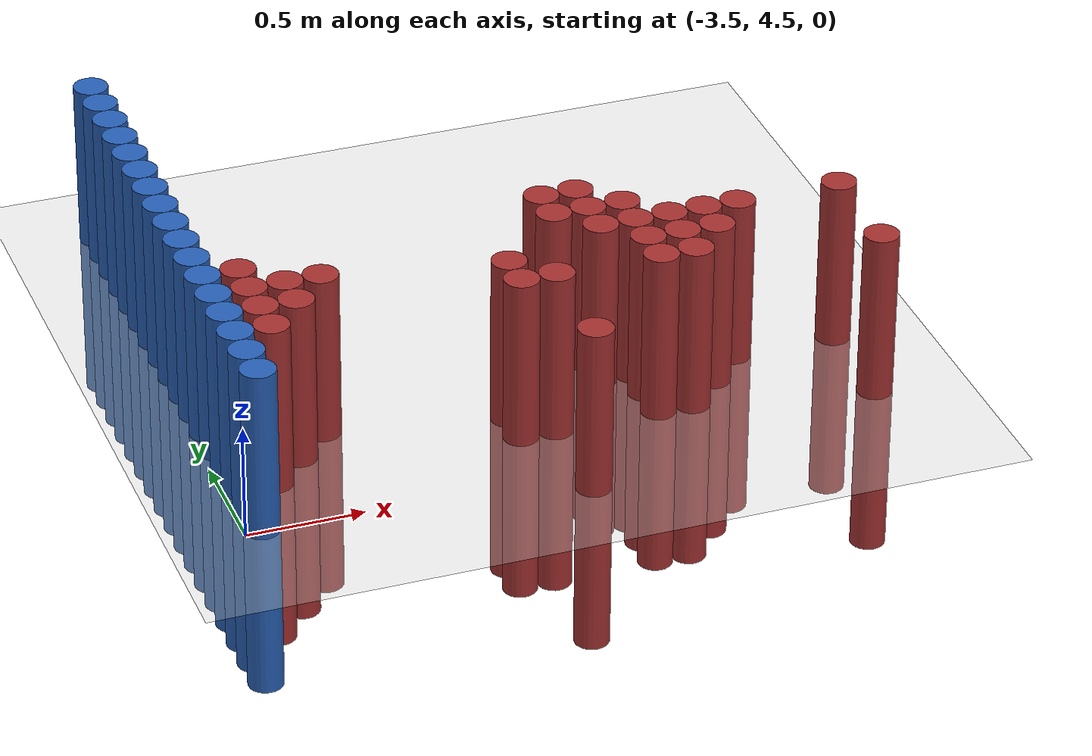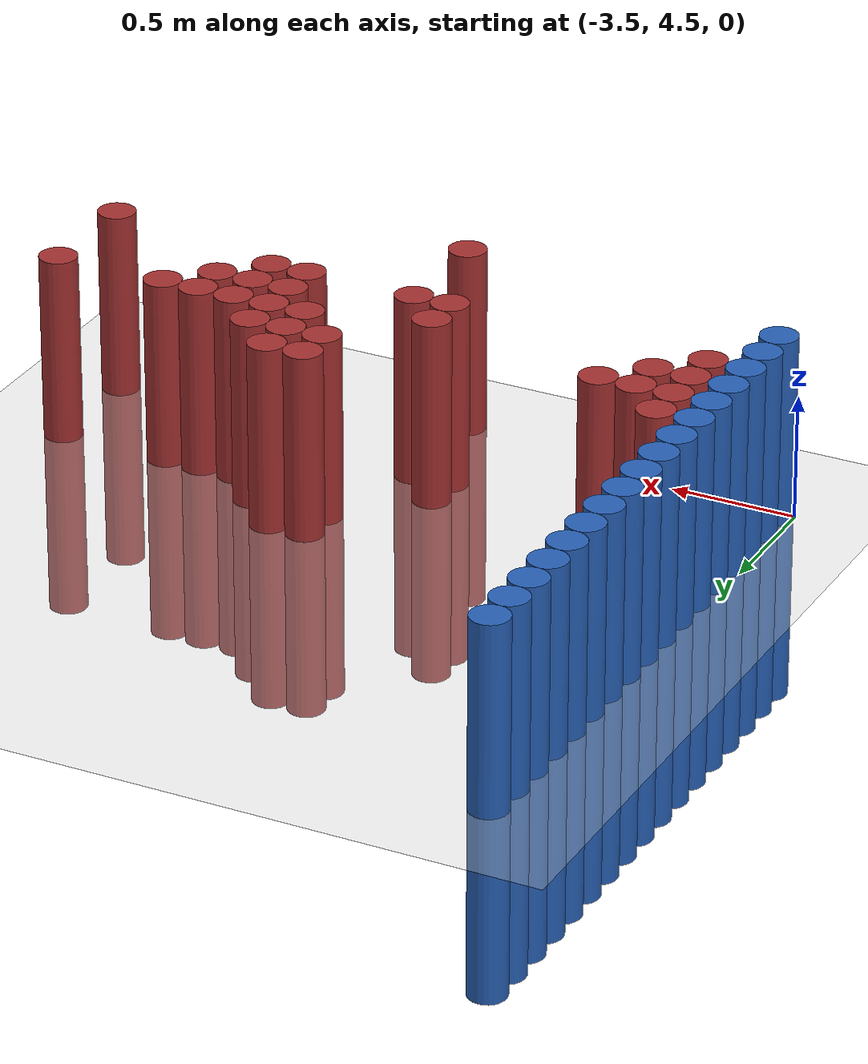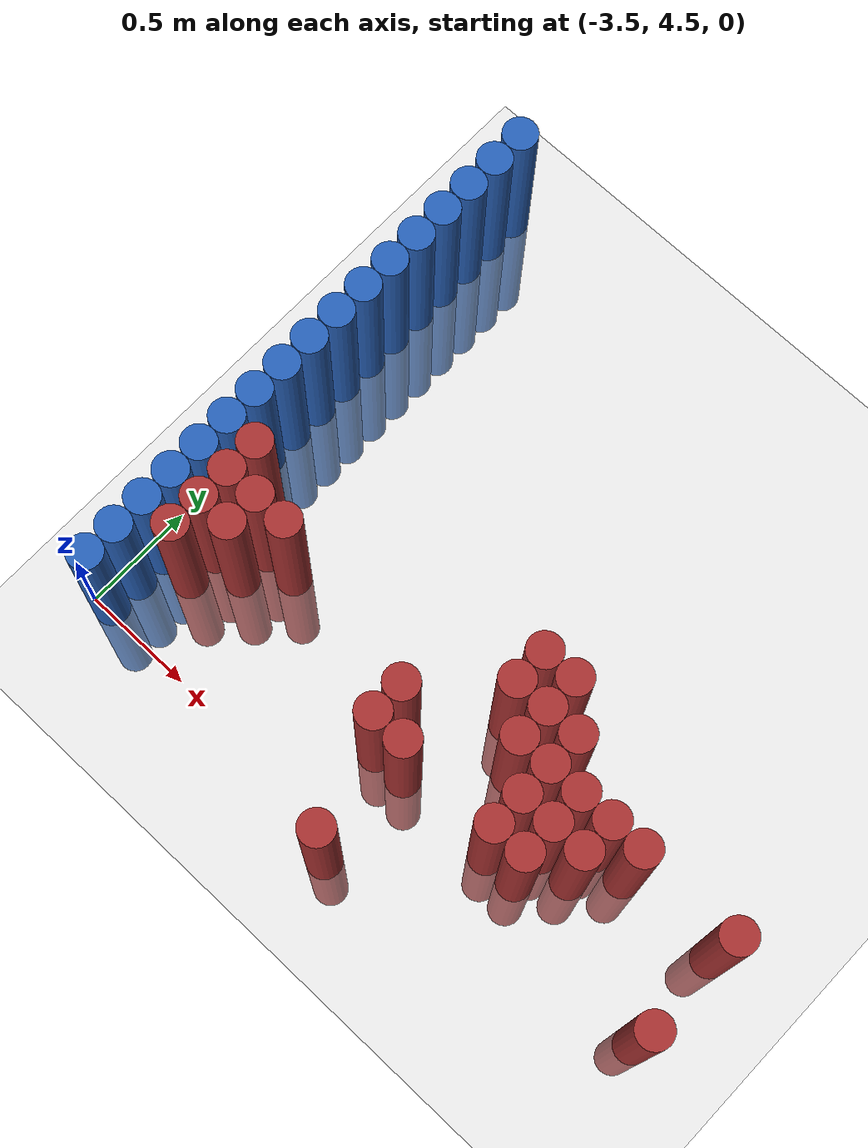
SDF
<sdf version="1.6">
 <world name="default">
  <model name="ground_plane">
   <static>1</static>
   <link name="link">
    <collision name="collision">
     <geometry><plane><normal>0 0 1</normal><size>100 100</size></plane></geometry>
     <surface><friction><ode><mu>100</mu><mu2>50</mu2></ode></friction></surface>
    </collision>
    <visual name="visual">
     <cast_shadows>0</cast_shadows>
     <geometry><plane><normal>0 0 1</normal><size>100 100</size></plane></geometry>
     <material>
      <script><uri>file://media/materials/scripts/gazebo.material</uri><name>Gazebo/Grey</name></script>
     </material>
    </visual>
   </link>
  </model>
  <model name="unit_cylinder_175">
   <static>1</static>
   <pose>-3.425000 4.525000 0.000000 0.000000 0.000000 0.000000</pose>
   <link name="link">
    <inertial>
     <mass>1</mass>
     <inertia><ixx>0.145833</ixx><ixy>0</ixy><ixz>0</ixz><iyy>0.145833</iyy><iyz>0</iyz><izz>0.125</izz></inertia>
    </inertial>
    <collision name="collision">
     <geometry><cylinder><radius>0.075000</radius><length>1.5</length></cylinder></geometry>
    </collision>
    <visual name="visual">
     <geometry><cylinder><radius>0.075000</radius><length>1.5</length></cylinder></geometry>
     <material>
      <ambient>0.152000 0.379000 0.720000 1</ambient>
      <diffuse>0.152000 0.379000 0.720000 1</diffuse>
     </material>
     <material>
      <script><name>Gazebo/Grey</name><uri>file://media/materials/scripts/gazebo.material</uri></script>
     </material>
    </visual>
   </link>
  </model>
  <model name="unit_cylinder_177">
   <static>1</static>
   <pose>-3.425000 4.675000 0.000000 0.000000 0.000000 0.000000</pose>
   <link name="link">
    <inertial>
     <mass>1</mass>
     <inertia><ixx>0.145833</ixx><ixy>0</ixy><ixz>0</ixz><iyy>0.145833</iyy><iyz>0</iyz><izz>0.125</izz></inertia>
    </inertial>
    <collision name="collision">
     <geometry><cylinder><radius>0.075000</radius><length>1.5</length></cylinder></geometry>
    </collision>
    <visual name="visual">
     <geometry><cylinder><radius>0.075000</radius><length>1.5</length></cylinder></geometry>
     <material>
      <ambient>0.152000 0.379000 0.720000 1</ambient>
      <diffuse>0.152000 0.379000 0.720000 1</diffuse>
     </material>
     <material>
      <script><name>Gazebo/Grey</name><uri>file://media/materials/scripts/gazebo.material</uri></script>
     </material>
    </visual>
   </link>
  </model>
  <model name="unit_cylinder_179">
   <static>1</static>
   <pose>-3.425000 4.825000 0.000000 0.000000 0.000000 0.000000</pose>
   <link name="link">
    <inertial>
     <mass>1</mass>
     <inertia><ixx>0.145833</ixx><ixy>0</ixy><ixz>0</ixz><iyy>0.145833</iyy><iyz>0</iyz><izz>0.125</izz></inertia>
    </inertial>
    <collision name="collision">
     <geometry><cylinder><radius>0.075000</radius><length>1.5</length></cylinder></geometry>
    </collision>
    <visual name="visual">
     <geometry><cylinder><radius>0.075000</radius><length>1.5</length></cylinder></geometry>
     <material>
      <ambient>0.152000 0.379000 0.720000 1</ambient>
      <diffuse>0.152000 0.379000 0.720000 1</diffuse>
     </material>
     <material>
      <script><name>Gazebo/Grey</name><uri>file://media/materials/scripts/gazebo.material</uri></script>
     </material>
    </visual>
   </link>
  </model>
  <model name="unit_cylinder_181">
   <static>1</static>
   <pose>-3.425000 4.975000 0.000000 0.000000 0.000000 0.000000</pose>
   <link name="link">
    <inertial>
     <mass>1</mass>
     <inertia><ixx>0.145833</ixx><ixy>0</ixy><ixz>0</ixz><iyy>0.145833</iyy><iyz>0</iyz><izz>0.125</izz></inertia>
    </inertial>
    <collision name="collision">
     <geometry><cylinder><radius>0.075000</radius><length>1.5</length></cylinder></geometry>
    </collision>
    <visual name="visual">
     <geometry><cylinder><radius>0.075000</radius><length>1.5</length></cylinder></geometry>
     <material>
      <ambient>0.152000 0.379000 0.720000 1</ambient>
      <diffuse>0.152000 0.379000 0.720000 1</diffuse>
     </material>
     <material>
      <script><name>Gazebo/Grey</name><uri>file://media/materials/scripts/gazebo.material</uri></script>
     </material>
    </visual>
   </link>
  </model>
  <model name="unit_cylinder_183">
   <static>1</static>
   <pose>-3.425000 5.125000 0.000000 0.000000 0.000000 0.000000</pose>
   <link name="link">
    <inertial>
     <mass>1</mass>
     <inertia><ixx>0.145833</ixx><ixy>0</ixy><ixz>0</ixz><iyy>0.145833</iyy><iyz>0</iyz><izz>0.125</izz></inertia>
    </inertial>
    <collision name="collision">
     <geometry><cylinder><radius>0.075000</radius><length>1.5</length></cylinder></geometry>
    </collision>
    <visual name="visual">
     <geometry><cylinder><radius>0.075000</radius><length>1.5</length></cylinder></geometry>
     <material>
      <ambient>0.152000 0.379000 0.720000 1</ambient>
      <diffuse>0.152000 0.379000 0.720000 1</diffuse>
     </material>
     <material>
      <script><name>Gazebo/Grey</name><uri>file://media/materials/scripts/gazebo.material</uri></script>
     </material>
    </visual>
   </link>
  </model>
  <model name="unit_cylinder_185">
   <static>1</static>
   <pose>-3.425000 5.275000 0.000000 0.000000 0.000000 0.000000</pose>
   <link name="link">
    <inertial>
     <mass>1</mass>
     <inertia><ixx>0.145833</ixx><ixy>0</ixy><ixz>0</ixz><iyy>0.145833</iyy><iyz>0</iyz><izz>0.125</izz></inertia>
    </inertial>
    <collision name="collision">
     <geometry><cylinder><radius>0.075000</radius><length>1.5</length></cylinder></geometry>
    </collision>
    <visual name="visual">
     <geometry><cylinder><radius>0.075000</radius><length>1.5</length></cylinder></geometry>
     <material>
      <ambient>0.152000 0.379000 0.720000 1</ambient>
      <diffuse>0.152000 0.379000 0.720000 1</diffuse>
     </material>
     <material>
      <script><name>Gazebo/Grey</name><uri>file://media/materials/scripts/gazebo.material</uri></script>
     </material>
    </visual>
   </link>
  </model>
  <model name="unit_cylinder_187">
   <static>1</static>
   <pose>-3.425000 5.425000 0.000000 0.000000 0.000000 0.000000</pose>
   <link name="link">
    <inertial>
     <mass>1</mass>
     <inertia><ixx>0.145833</ixx><ixy>0</ixy><ixz>0</ixz><iyy>0.145833</iyy><iyz>0</iyz><izz>0.125</izz></inertia>
    </inertial>
    <collision name="collision">
     <geometry><cylinder><radius>0.075000</radius><length>1.5</length></cylinder></geometry>
    </collision>
    <visual name="visual">
     <geometry><cylinder><radius>0.075000</radius><length>1.5</length></cylinder></geometry>
     <material>
      <ambient>0.152000 0.379000 0.720000 1</ambient>
      <diffuse>0.152000 0.379000 0.720000 1</diffuse>
     </material>
     <material>
      <script><name>Gazebo/Grey</name><uri>file://media/materials/scripts/gazebo.material</uri></script>
     </material>
    </visual>
   </link>
  </model>
  <model name="unit_cylinder_189">
   <static>1</static>
   <pose>-3.425000 5.575000 0.000000 0.000000 0.000000 0.000000</pose>
   <link name="link">
    <inertial>
     <mass>1</mass>
     <inertia><ixx>0.145833</ixx><ixy>0</ixy><ixz>0</ixz><iyy>0.145833</iyy><iyz>0</iyz><izz>0.125</izz></inertia>
    </inertial>
    <collision name="collision">
     <geometry><cylinder><radius>0.075000</radius><length>1.5</length></cylinder></geometry>
    </collision>
    <visual name="visual">
     <geometry><cylinder><radius>0.075000</radius><length>1.5</length></cylinder></geometry>
     <material>
      <ambient>0.152000 0.379000 0.720000 1</ambient>
      <diffuse>0.152000 0.379000 0.720000 1</diffuse>
     </material>
     <material>
      <script><name>Gazebo/Grey</name><uri>file://media/materials/scripts/gazebo.material</uri></script>
     </material>
    </visual>
   </link>
  </model>
  <model name="unit_cylinder_191">
   <static>1</static>
   <pose>-3.425000 5.725000 0.000000 0.000000 0.000000 0.000000</pose>
   <link name="link">
    <inertial>
     <mass>1</mass>
     <inertia><ixx>0.145833</ixx><ixy>0</ixy><ixz>0</ixz><iyy>0.145833</iyy><iyz>0</iyz><izz>0.125</izz></inertia>
    </inertial>
    <collision name="collision">
     <geometry><cylinder><radius>0.075000</radius><length>1.5</length></cylinder></geometry>
    </collision>
    <visual name="visual">
     <geometry><cylinder><radius>0.075000</radius><length>1.5</length></cylinder></geometry>
     <material>
      <ambient>0.152000 0.379000 0.720000 1</ambient>
      <diffuse>0.152000 0.379000 0.720000 1</diffuse>
     </material>
     <material>
      <script><name>Gazebo/Grey</name><uri>file://media/materials/scripts/gazebo.material</uri></script>
     </material>
    </visual>
   </link>
  </model>
  <model name="unit_cylinder_193">
   <static>1</static>
   <pose>-3.425000 5.875000 0.000000 0.000000 0.000000 0.000000</pose>
   <link name="link">
    <inertial>
     <mass>1</mass>
     <inertia><ixx>0.145833</ixx><ixy>0</ixy><ixz>0</ixz><iyy>0.145833</iyy><iyz>0</iyz><izz>0.125</izz></inertia>
    </inertial>
    <collision name="collision">
     <geometry><cylinder><radius>0.075000</radius><length>1.5</length></cylinder></geometry>
    </collision>
    <visual name="visual">
     <geometry><cylinder><radius>0.075000</radius><length>1.5</length></cylinder></geometry>
     <material>
      <ambient>0.152000 0.379000 0.720000 1</ambient>
      <diffuse>0.152000 0.379000 0.720000 1</diffuse>
     </material>
     <material>
      <script><name>Gazebo/Grey</name><uri>file://media/materials/scripts/gazebo.material</uri></script>
     </material>
    </visual>
   </link>
  </model>
  <model name="unit_cylinder_195">
   <static>1</static>
   <pose>-3.425000 6.025000 0.000000 0.000000 0.000000 0.000000</pose>
   <link name="link">
    <inertial>
     <mass>1</mass>
     <inertia><ixx>0.145833</ixx><ixy>0</ixy><ixz>0</ixz><iyy>0.145833</iyy><iyz>0</iyz><izz>0.125</izz></inertia>
    </inertial>
    <collision name="collision">
     <geometry><cylinder><radius>0.075000</radius><length>1.5</length></cylinder></geometry>
    </collision>
    <visual name="visual">
     <geometry><cylinder><radius>0.075000</radius><length>1.5</length></cylinder></geometry>
     <material>
      <ambient>0.152000 0.379000 0.720000 1</ambient>
      <diffuse>0.152000 0.379000 0.720000 1</diffuse>
     </material>
     <material>
      <script><name>Gazebo/Grey</name><uri>file://media/materials/scripts/gazebo.material</uri></script>
     </material>
    </visual>
   </link>
  </model>
  <model name="unit_cylinder_197">
   <static>1</static>
   <pose>-3.425000 6.175000 0.000000 0.000000 0.000000 0.000000</pose>
   <link name="link">
    <inertial>
     <mass>1</mass>
     <inertia><ixx>0.145833</ixx><ixy>0</ixy><ixz>0</ixz><iyy>0.145833</iyy><iyz>0</iyz><izz>0.125</izz></inertia>
    </inertial>
    <collision name="collision">
     <geometry><cylinder><radius>0.075000</radius><length>1.5</length></cylinder></geometry>
    </collision>
    <visual name="visual">
     <geometry><cylinder><radius>0.075000</radius><length>1.5</length></cylinder></geometry>
     <material>
      <ambient>0.152000 0.379000 0.720000 1</ambient>
      <diffuse>0.152000 0.379000 0.720000 1</diffuse>
     </material>
     <material>
      <script><name>Gazebo/Grey</name><uri>file://media/materials/scripts/gazebo.material</uri></script>
     </material>
    </visual>
   </link>
  </model>
  <model name="unit_cylinder_199">
   <static>1</static>
   <pose>-3.425000 6.325000 0.000000 0.000000 0.000000 0.000000</pose>
   <link name="link">
    <inertial>
     <mass>1</mass>
     <inertia><ixx>0.145833</ixx><ixy>0</ixy><ixz>0</ixz><iyy>0.145833</iyy><iyz>0</iyz><izz>0.125</izz></inertia>
    </inertial>
    <collision name="collision">
     <geometry><cylinder><radius>0.075000</radius><length>1.5</length></cylinder></geometry>
    </collision>
    <visual name="visual">
     <geometry><cylinder><radius>0.075000</radius><length>1.5</length></cylinder></geometry>
     <material>
      <ambient>0.152000 0.379000 0.720000 1</ambient>
      <diffuse>0.152000 0.379000 0.720000 1</diffuse>
     </material>
     <material>
      <script><name>Gazebo/Grey</name><uri>file://media/materials/scripts/gazebo.material</uri></script>
     </material>
    </visual>
   </link>
  </model>
  <model name="unit_cylinder_201">
   <static>1</static>
   <pose>-3.425000 6.475000 0.000000 0.000000 0.000000 0.000000</pose>
   <link name="link">
    <inertial>
     <mass>1</mass>
     <inertia><ixx>0.145833</ixx><ixy>0</ixy><ixz>0</ixz><iyy>0.145833</iyy><iyz>0</iyz><izz>0.125</izz></inertia>
    </inertial>
    <collision name="collision">
     <geometry><cylinder><radius>0.075000</radius><length>1.5</length></cylinder></geometry>
    </collision>
    <visual name="visual">
     <geometry><cylinder><radius>0.075000</radius><length>1.5</length></cylinder></geometry>
     <material>
      <ambient>0.152000 0.379000 0.720000 1</ambient>
      <diffuse>0.152000 0.379000 0.720000 1</diffuse>
     </material>
     <material>
      <script><name>Gazebo/Grey</name><uri>file://media/materials/scripts/gazebo.material</uri></script>
     </material>
    </visual>
   </link>
  </model>
  <model name="unit_cylinder_203">
   <static>1</static>
   <pose>-3.425000 6.625000 0.000000 0.000000 0.000000 0.000000</pose>
   <link name="link">
    <inertial>
     <mass>1</mass>
     <inertia><ixx>0.145833</ixx><ixy>0</ixy><ixz>0</ixz><iyy>0.145833</iyy><iyz>0</iyz><izz>0.125</izz></inertia>
    </inertial>
    <collision name="collision">
     <geometry><cylinder><radius>0.075000</radius><length>1.5</length></cylinder></geometry>
    </collision>
    <visual name="visual">
     <geometry><cylinder><radius>0.075000</radius><length>1.5</length></cylinder></geometry>
     <material>
      <ambient>0.152000 0.379000 0.720000 1</ambient>
      <diffuse>0.152000 0.379000 0.720000 1</diffuse>
     </material>
     <material>
      <script><name>Gazebo/Grey</name><uri>file://media/materials/scripts/gazebo.material</uri></script>
     </material>
    </visual>
   </link>
  </model>
  <model name="unit_cylinder_205">
   <static>1</static>
   <pose>-3.425000 6.775000 0.000000 0.000000 0.000000 0.000000</pose>
   <link name="link">
    <inertial>
     <mass>1</mass>
     <inertia><ixx>0.145833</ixx><ixy>0</ixy><ixz>0</ixz><iyy>0.145833</iyy><iyz>0</iyz><izz>0.125</izz></inertia>
    </inertial>
    <collision name="collision">
     <geometry><cylinder><radius>0.075000</radius><length>1.5</length></cylinder></geometry>
    </collision>
    <visual name="visual">
     <geometry><cylinder><radius>0.075000</radius><length>1.5</length></cylinder></geometry>
     <material>
      <ambient>0.152000 0.379000 0.720000 1</ambient>
      <diffuse>0.152000 0.379000 0.720000 1</diffuse>
     </material>
     <material>
      <script><name>Gazebo/Grey</name><uri>file://media/materials/scripts/gazebo.material</uri></script>
     </material>
    </visual>
   </link>
  </model>
  <model name="unit_cylinder_207">
   <static>1</static>
   <pose>-3.425000 6.925000 0.000000 0.000000 0.000000 0.000000</pose>
   <link name="link">
    <inertial>
     <mass>1</mass>
     <inertia><ixx>0.145833</ixx><ixy>0</ixy><ixz>0</ixz><iyy>0.145833</iyy><iyz>0</iyz><izz>0.125</izz></inertia>
    </inertial>
    <collision name="collision">
     <geometry><cylinder><radius>0.075000</radius><length>1.5</length></cylinder></geometry>
    </collision>
    <visual name="visual">
     <geometry><cylinder><radius>0.075000</radius><length>1.5</length></cylinder></geometry>
     <material>
      <ambient>0.152000 0.379000 0.720000 1</ambient>
      <diffuse>0.152000 0.379000 0.720000 1</diffuse>
     </material>
     <material>
      <script><name>Gazebo/Grey</name><uri>file://media/materials/scripts/gazebo.material</uri></script>
     </material>
    </visual>
   </link>
  </model>
  <model name="unit_cylinder_251">
   <static>1</static>
   <pose>-3.425000 4.525000 0.000000 0.000000 0.000000 0.000000</pose>
   <link name="link">
    <inertial>
     <mass>1</mass>
     <inertia><ixx>0.145833</ixx><ixy>0</ixy><ixz>0</ixz><iyy>0.145833</iyy><iyz>0</iyz><izz>0.125</izz></inertia>
    </inertial>
    <collision name="collision">
     <geometry><cylinder><radius>0.075000</radius><length>1.5</length></cylinder></geometry>
    </collision>
    <visual name="visual">
     <geometry><cylinder><radius>0.075000</radius><length>1.5</length></cylinder></geometry>
     <material>
      <ambient>0.152000 0.379000 0.720000 1</ambient>
      <diffuse>0.152000 0.379000 0.720000 1</diffuse>
     </material>
     <material>
      <script><name>Gazebo/Grey</name><uri>file://media/materials/scripts/gazebo.material</uri></script>
     </material>
    </visual>
   </link>
  </model>
  <model name="unit_cylinder_252">
   <static>1</static>
   <pose>-3.425000 4.675000 0.000000 0.000000 0.000000 0.000000</pose>
   <link name="link">
    <inertial>
     <mass>1</mass>
     <inertia><ixx>0.145833</ixx><ixy>0</ixy><ixz>0</ixz><iyy>0.145833</iyy><iyz>0</iyz><izz>0.125</izz></inertia>
    </inertial>
    <collision name="collision">
     <geometry><cylinder><radius>0.075000</radius><length>1.5</length></cylinder></geometry>
    </collision>
    <visual name="visual">
     <geometry><cylinder><radius>0.075000</radius><length>1.5</length></cylinder></geometry>
     <material>
      <ambient>0.152000 0.379000 0.720000 1</ambient>
      <diffuse>0.152000 0.379000 0.720000 1</diffuse>
     </material>
     <material>
      <script><name>Gazebo/Grey</name><uri>file://media/materials/scripts/gazebo.material</uri></script>
     </material>
    </visual>
   </link>
  </model>
  <model name="unit_cylinder_253">
   <static>1</static>
   <pose>-3.425000 4.825000 0.000000 0.000000 0.000000 0.000000</pose>
   <link name="link">
    <inertial>
     <mass>1</mass>
     <inertia><ixx>0.145833</ixx><ixy>0</ixy><ixz>0</ixz><iyy>0.145833</iyy><iyz>0</iyz><izz>0.125</izz></inertia>
    </inertial>
    <collision name="collision">
     <geometry><cylinder><radius>0.075000</radius><length>1.5</length></cylinder></geometry>
    </collision>
    <visual name="visual">
     <geometry><cylinder><radius>0.075000</radius><length>1.5</length></cylinder></geometry>
     <material>
      <ambient>0.152000 0.379000 0.720000 1</ambient>
      <diffuse>0.152000 0.379000 0.720000 1</diffuse>
     </material>
     <material>
      <script><name>Gazebo/Grey</name><uri>file://media/materials/scripts/gazebo.material</uri></script>
     </material>
    </visual>
   </link>
  </model>
  <model name="unit_cylinder_254">
   <static>1</static>
   <pose>-3.425000 4.975000 0.000000 0.000000 0.000000 0.000000</pose>
   <link name="link">
    <inertial>
     <mass>1</mass>
     <inertia><ixx>0.145833</ixx><ixy>0</ixy><ixz>0</ixz><iyy>0.145833</iyy><iyz>0</iyz><izz>0.125</izz></inertia>
    </inertial>
    <collision name="collision">
     <geometry><cylinder><radius>0.075000</radius><length>1.5</length></cylinder></geometry>
    </collision>
    <visual name="visual">
     <geometry><cylinder><radius>0.075000</radius><length>1.5</length></cylinder></geometry>
     <material>
      <ambient>0.152000 0.379000 0.720000 1</ambient>
      <diffuse>0.152000 0.379000 0.720000 1</diffuse>
     </material>
     <material>
      <script><name>Gazebo/Grey</name><uri>file://media/materials/scripts/gazebo.material</uri></script>
     </material>
    </visual>
   </link>
  </model>
  <model name="unit_cylinder_255">
   <static>1</static>
   <pose>-3.425000 5.125000 0.000000 0.000000 0.000000 0.000000</pose>
   <link name="link">
    <inertial>
     <mass>1</mass>
     <inertia><ixx>0.145833</ixx><ixy>0</ixy><ixz>0</ixz><iyy>0.145833</iyy><iyz>0</iyz><izz>0.125</izz></inertia>
    </inertial>
    <collision name="collision">
     <geometry><cylinder><radius>0.075000</radius><length>1.5</length></cylinder></geometry>
    </collision>
    <visual name="visual">
     <geometry><cylinder><radius>0.075000</radius><length>1.5</length></cylinder></geometry>
     <material>
      <ambient>0.152000 0.379000 0.720000 1</ambient>
      <diffuse>0.152000 0.379000 0.720000 1</diffuse>
     </material>
     <material>
      <script><name>Gazebo/Grey</name><uri>file://media/materials/scripts/gazebo.material</uri></script>
     </material>
    </visual>
   </link>
  </model>
  <model name="unit_cylinder_256">
   <static>1</static>
   <pose>-3.425000 5.275000 0.000000 0.000000 0.000000 0.000000</pose>
   <link name="link">
    <inertial>
     <mass>1</mass>
     <inertia><ixx>0.145833</ixx><ixy>0</ixy><ixz>0</ixz><iyy>0.145833</iyy><iyz>0</iyz><izz>0.125</izz></inertia>
    </inertial>
    <collision name="collision">
     <geometry><cylinder><radius>0.075000</radius><length>1.5</length></cylinder></geometry>
    </collision>
    <visual name="visual">
     <geometry><cylinder><radius>0.075000</radius><length>1.5</length></cylinder></geometry>
     <material>
      <ambient>0.152000 0.379000 0.720000 1</ambient>
      <diffuse>0.152000 0.379000 0.720000 1</diffuse>
     </material>
     <material>
      <script><name>Gazebo/Grey</name><uri>file://media/materials/scripts/gazebo.material</uri></script>
     </material>
    </visual>
   </link>
  </model>
  <model name="unit_cylinder_257">
   <static>1</static>
   <pose>-3.425000 5.425000 0.000000 0.000000 0.000000 0.000000</pose>
   <link name="link">
    <inertial>
     <mass>1</mass>
     <inertia><ixx>0.145833</ixx><ixy>0</ixy><ixz>0</ixz><iyy>0.145833</iyy><iyz>0</iyz><izz>0.125</izz></inertia>
    </inertial>
    <collision name="collision">
     <geometry><cylinder><radius>0.075000</radius><length>1.5</length></cylinder></geometry>
    </collision>
    <visual name="visual">
     <geometry><cylinder><radius>0.075000</radius><length>1.5</length></cylinder></geometry>
     <material>
      <ambient>0.152000 0.379000 0.720000 1</ambient>
      <diffuse>0.152000 0.379000 0.720000 1</diffuse>
     </material>
     <material>
      <script><name>Gazebo/Grey</name><uri>file://media/materials/scripts/gazebo.material</uri></script>
     </material>
    </visual>
   </link>
  </model>
  <model name="unit_cylinder_276">
   <static>1</static>
   <pose>-3.275000 4.825000 0.000000 0.000000 0.000000 0.000000</pose>
   <link name="link">
    <inertial>
     <mass>1</mass>
     <inertia><ixx>0.145833</ixx><ixy>0</ixy><ixz>0</ixz><iyy>0.145833</iyy><iyz>0</iyz><izz>0.125</izz></inertia>
    </inertial>
    <collision name="collision">
     <geometry><cylinder><radius>0.075000</radius><length>1.5</length></cylinder></geometry>
    </collision>
    <visual name="visual">
     <geometry><cylinder><radius>0.075000</radius><length>1.5</length></cylinder></geometry>
     <material>
      <ambient>0.648000 0.192000 0.192000 1</ambient>
      <diffuse>0.648000 0.192000 0.192000 1</diffuse>
     </material>
     <material>
      <script><name>Gazebo/Grey</name><uri>file://media/materials/scripts/gazebo.material</uri></script>
     </material>
    </visual>
   </link>
  </model>
  <model name="unit_cylinder_277">
   <static>1</static>
   <pose>-3.275000 4.975000 0.000000 0.000000 0.000000 0.000000</pose>
   <link name="link">
    <inertial>
     <mass>1</mass>
     <inertia><ixx>0.145833</ixx><ixy>0</ixy><ixz>0</ixz><iyy>0.145833</iyy><iyz>0</iyz><izz>0.125</izz></inertia>
    </inertial>
    <collision name="collision">
     <geometry><cylinder><radius>0.075000</radius><length>1.5</length></cylinder></geometry>
    </collision>
    <visual name="visual">
     <geometry><cylinder><radius>0.075000</radius><length>1.5</length></cylinder></geometry>
     <material>
      <ambient>0.648000 0.192000 0.192000 1</ambient>
      <diffuse>0.648000 0.192000 0.192000 1</diffuse>
     </material>
     <material>
      <script><name>Gazebo/Grey</name><uri>file://media/materials/scripts/gazebo.material</uri></script>
     </material>
    </visual>
   </link>
  </model>
  <model name="unit_cylinder_278">
   <static>1</static>
   <pose>-3.275000 5.125000 0.000000 0.000000 0.000000 0.000000</pose>
   <link name="link">
    <inertial>
     <mass>1</mass>
     <inertia><ixx>0.145833</ixx><ixy>0</ixy><ixz>0</ixz><iyy>0.145833</iyy><iyz>0</iyz><izz>0.125</izz></inertia>
    </inertial>
    <collision name="collision">
     <geometry><cylinder><radius>0.075000</radius><length>1.5</length></cylinder></geometry>
    </collision>
    <visual name="visual">
     <geometry><cylinder><radius>0.075000</radius><length>1.5</length></cylinder></geometry>
     <material>
      <ambient>0.648000 0.192000 0.192000 1</ambient>
      <diffuse>0.648000 0.192000 0.192000 1</diffuse>
     </material>
     <material>
      <script><name>Gazebo/Grey</name><uri>file://media/materials/scripts/gazebo.material</uri></script>
     </material>
    </visual>
   </link>
  </model>
  <model name="unit_cylinder_279">
   <static>1</static>
   <pose>-3.275000 5.275000 0.000000 0.000000 0.000000 0.000000</pose>
   <link name="link">
    <inertial>
     <mass>1</mass>
     <inertia><ixx>0.145833</ixx><ixy>0</ixy><ixz>0</ixz><iyy>0.145833</iyy><iyz>0</iyz><izz>0.125</izz></inertia>
    </inertial>
    <collision name="collision">
     <geometry><cylinder><radius>0.075000</radius><length>1.5</length></cylinder></geometry>
    </collision>
    <visual name="visual">
     <geometry><cylinder><radius>0.075000</radius><length>1.5</length></cylinder></geometry>
     <material>
      <ambient>0.648000 0.192000 0.192000 1</ambient>
      <diffuse>0.648000 0.192000 0.192000 1</diffuse>
     </material>
     <material>
      <script><name>Gazebo/Grey</name><uri>file://media/materials/scripts/gazebo.material</uri></script>
     </material>
    </visual>
   </link>
  </model>
  <model name="unit_cylinder_291">
   <static>1</static>
   <pose>-3.125000 4.975000 0.000000 0.000000 0.000000 0.000000</pose>
   <link name="link">
    <inertial>
     <mass>1</mass>
     <inertia><ixx>0.145833</ixx><ixy>0</ixy><ixz>0</ixz><iyy>0.145833</iyy><iyz>0</iyz><izz>0.125</izz></inertia>
    </inertial>
    <collision name="collision">
     <geometry><cylinder><radius>0.075000</radius><length>1.5</length></cylinder></geometry>
    </collision>
    <visual name="visual">
     <geometry><cylinder><radius>0.075000</radius><length>1.5</length></cylinder></geometry>
     <material>
      <ambient>0.648000 0.192000 0.192000 1</ambient>
      <diffuse>0.648000 0.192000 0.192000 1</diffuse>
     </material>
     <material>
      <script><name>Gazebo/Grey</name><uri>file://media/materials/scripts/gazebo.material</uri></script>
     </material>
    </visual>
   </link>
  </model>
  <model name="unit_cylinder_292">
   <static>1</static>
   <pose>-3.125000 5.125000 0.000000 0.000000 0.000000 0.000000</pose>
   <link name="link">
    <inertial>
     <mass>1</mass>
     <inertia><ixx>0.145833</ixx><ixy>0</ixy><ixz>0</ixz><iyy>0.145833</iyy><iyz>0</iyz><izz>0.125</izz></inertia>
    </inertial>
    <collision name="collision">
     <geometry><cylinder><radius>0.075000</radius><length>1.5</length></cylinder></geometry>
    </collision>
    <visual name="visual">
     <geometry><cylinder><radius>0.075000</radius><length>1.5</length></cylinder></geometry>
     <material>
      <ambient>0.648000 0.192000 0.192000 1</ambient>
      <diffuse>0.648000 0.192000 0.192000 1</diffuse>
     </material>
     <material>
      <script><name>Gazebo/Grey</name><uri>file://media/materials/scripts/gazebo.material</uri></script>
     </material>
    </visual>
   </link>
  </model>
  <model name="unit_cylinder_303">
   <static>1</static>
   <pose>-2.975000 5.125000 0.000000 0.000000 0.000000 0.000000</pose>
   <link name="link">
    <inertial>
     <mass>1</mass>
     <inertia><ixx>0.145833</ixx><ixy>0</ixy><ixz>0</ixz><iyy>0.145833</iyy><iyz>0</iyz><izz>0.125</izz></inertia>
    </inertial>
    <collision name="collision">
     <geometry><cylinder><radius>0.075000</radius><length>1.5</length></cylinder></geometry>
    </collision>
    <visual name="visual">
     <geometry><cylinder><radius>0.075000</radius><length>1.5</length></cylinder></geometry>
     <material>
      <ambient>0.648000 0.192000 0.192000 1</ambient>
      <diffuse>0.648000 0.192000 0.192000 1</diffuse>
     </material>
     <material>
      <script><name>Gazebo/Grey</name><uri>file://media/materials/scripts/gazebo.material</uri></script>
     </material>
    </visual>
   </link>
  </model>
  <model name="unit_cylinder_327">
   <static>1</static>
   <pose>-2.225000 4.825000 0.000000 0.000000 0.000000 0.000000</pose>
   <link name="link">
    <inertial>
     <mass>1</mass>
     <inertia><ixx>0.145833</ixx><ixy>0</ixy><ixz>0</ixz><iyy>0.145833</iyy><iyz>0</iyz><izz>0.125</izz></inertia>
    </inertial>
    <collision name="collision">
     <geometry><cylinder><radius>0.075000</radius><length>1.5</length></cylinder></geometry>
    </collision>
    <visual name="visual">
     <geometry><cylinder><radius>0.075000</radius><length>1.5</length></cylinder></geometry>
     <material>
      <ambient>0.648000 0.192000 0.192000 1</ambient>
      <diffuse>0.648000 0.192000 0.192000 1</diffuse>
     </material>
     <material>
      <script><name>Gazebo/Grey</name><uri>file://media/materials/scripts/gazebo.material</uri></script>
     </material>
    </visual>
   </link>
  </model>
  <model name="unit_cylinder_328">
   <static>1</static>
   <pose>-2.225000 4.975000 0.000000 0.000000 0.000000 0.000000</pose>
   <link name="link">
    <inertial>
     <mass>1</mass>
     <inertia><ixx>0.145833</ixx><ixy>0</ixy><ixz>0</ixz><iyy>0.145833</iyy><iyz>0</iyz><izz>0.125</izz></inertia>
    </inertial>
    <collision name="collision">
     <geometry><cylinder><radius>0.075000</radius><length>1.5</length></cylinder></geometry>
    </collision>
    <visual name="visual">
     <geometry><cylinder><radius>0.075000</radius><length>1.5</length></cylinder></geometry>
     <material>
      <ambient>0.648000 0.192000 0.192000 1</ambient>
      <diffuse>0.648000 0.192000 0.192000 1</diffuse>
     </material>
     <material>
      <script><name>Gazebo/Grey</name><uri>file://media/materials/scripts/gazebo.material</uri></script>
     </material>
    </visual>
   </link>
  </model>
  <model name="unit_cylinder_341">
   <static>1</static>
   <pose>-2.075000 4.375000 0.000000 0.000000 0.000000 0.000000</pose>
   <link name="link">
    <inertial>
     <mass>1</mass>
     <inertia><ixx>0.145833</ixx><ixy>0</ixy><ixz>0</ixz><iyy>0.145833</iyy><iyz>0</iyz><izz>0.125</izz></inertia>
    </inertial>
    <collision name="collision">
     <geometry><cylinder><radius>0.075000</radius><length>1.5</length></cylinder></geometry>
    </collision>
    <visual name="visual">
     <geometry><cylinder><radius>0.075000</radius><length>1.5</length></cylinder></geometry>
     <material>
      <ambient>0.648000 0.192000 0.192000 1</ambient>
      <diffuse>0.648000 0.192000 0.192000 1</diffuse>
     </material>
     <material>
      <script><name>Gazebo/Grey</name><uri>file://media/materials/scripts/gazebo.material</uri></script>
     </material>
    </visual>
   </link>
  </model>
  <model name="unit_cylinder_342">
   <static>1</static>
   <pose>-2.075000 4.825000 0.000000 0.000000 0.000000 0.000000</pose>
   <link name="link">
    <inertial>
     <mass>1</mass>
     <inertia><ixx>0.145833</ixx><ixy>0</ixy><ixz>0</ixz><iyy>0.145833</iyy><iyz>0</iyz><izz>0.125</izz></inertia>
    </inertial>
    <collision name="collision">
     <geometry><cylinder><radius>0.075000</radius><length>1.5</length></cylinder></geometry>
    </collision>
    <visual name="visual">
     <geometry><cylinder><radius>0.075000</radius><length>1.5</length></cylinder></geometry>
     <material>
      <ambient>0.648000 0.192000 0.192000 1</ambient>
      <diffuse>0.648000 0.192000 0.192000 1</diffuse>
     </material>
     <material>
      <script><name>Gazebo/Grey</name><uri>file://media/materials/scripts/gazebo.material</uri></script>
     </material>
    </visual>
   </link>
  </model>
  <model name="unit_cylinder_354">
   <static>1</static>
   <pose>-1.925000 5.275000 0.000000 0.000000 0.000000 0.000000</pose>
   <link name="link">
    <inertial>
     <mass>1</mass>
     <inertia><ixx>0.145833</ixx><ixy>0</ixy><ixz>0</ixz><iyy>0.145833</iyy><iyz>0</iyz><izz>0.125</izz></inertia>
    </inertial>
    <collision name="collision">
     <geometry><cylinder><radius>0.075000</radius><length>1.5</length></cylinder></geometry>
    </collision>
    <visual name="visual">
     <geometry><cylinder><radius>0.075000</radius><length>1.5</length></cylinder></geometry>
     <material>
      <ambient>0.648000 0.192000 0.192000 1</ambient>
      <diffuse>0.648000 0.192000 0.192000 1</diffuse>
     </material>
     <material>
      <script><name>Gazebo/Grey</name><uri>file://media/materials/scripts/gazebo.material</uri></script>
     </material>
    </visual>
   </link>
  </model>
  <model name="unit_cylinder_355">
   <static>1</static>
   <pose>-1.925000 5.425000 0.000000 0.000000 0.000000 0.000000</pose>
   <link name="link">
    <inertial>
     <mass>1</mass>
     <inertia><ixx>0.145833</ixx><ixy>0</ixy><ixz>0</ixz><iyy>0.145833</iyy><iyz>0</iyz><izz>0.125</izz></inertia>
    </inertial>
    <collision name="collision">
     <geometry><cylinder><radius>0.075000</radius><length>1.5</length></cylinder></geometry>
    </collision>
    <visual name="visual">
     <geometry><cylinder><radius>0.075000</radius><length>1.5</length></cylinder></geometry>
     <material>
      <ambient>0.648000 0.192000 0.192000 1</ambient>
      <diffuse>0.648000 0.192000 0.192000 1</diffuse>
     </material>
     <material>
      <script><name>Gazebo/Grey</name><uri>file://media/materials/scripts/gazebo.material</uri></script>
     </material>
    </visual>
   </link>
  </model>
  <model name="unit_cylinder_363">
   <static>1</static>
   <pose>-1.775000 5.125000 0.000000 0.000000 0.000000 0.000000</pose>
   <link name="link">
    <inertial>
     <mass>1</mass>
     <inertia><ixx>0.145833</ixx><ixy>0</ixy><ixz>0</ixz><iyy>0.145833</iyy><iyz>0</iyz><izz>0.125</izz></inertia>
    </inertial>
    <collision name="collision">
     <geometry><cylinder><radius>0.075000</radius><length>1.5</length></cylinder></geometry>
    </collision>
    <visual name="visual">
     <geometry><cylinder><radius>0.075000</radius><length>1.5</length></cylinder></geometry>
     <material>
      <ambient>0.648000 0.192000 0.192000 1</ambient>
      <diffuse>0.648000 0.192000 0.192000 1</diffuse>
     </material>
     <material>
      <script><name>Gazebo/Grey</name><uri>file://media/materials/scripts/gazebo.material</uri></script>
     </material>
    </visual>
   </link>
  </model>
  <model name="unit_cylinder_364">
   <static>1</static>
   <pose>-1.775000 5.275000 0.000000 0.000000 0.000000 0.000000</pose>
   <link name="link">
    <inertial>
     <mass>1</mass>
     <inertia><ixx>0.145833</ixx><ixy>0</ixy><ixz>0</ixz><iyy>0.145833</iyy><iyz>0</iyz><izz>0.125</izz></inertia>
    </inertial>
    <collision name="collision">
     <geometry><cylinder><radius>0.075000</radius><length>1.5</length></cylinder></geometry>
    </collision>
    <visual name="visual">
     <geometry><cylinder><radius>0.075000</radius><length>1.5</length></cylinder></geometry>
     <material>
      <ambient>0.648000 0.192000 0.192000 1</ambient>
      <diffuse>0.648000 0.192000 0.192000 1</diffuse>
     </material>
     <material>
      <script><name>Gazebo/Grey</name><uri>file://media/materials/scripts/gazebo.material</uri></script>
     </material>
    </visual>
   </link>
  </model>
  <model name="unit_cylinder_365">
   <static>1</static>
   <pose>-1.775000 5.425000 0.000000 0.000000 0.000000 0.000000</pose>
   <link name="link">
    <inertial>
     <mass>1</mass>
     <inertia><ixx>0.145833</ixx><ixy>0</ixy><ixz>0</ixz><iyy>0.145833</iyy><iyz>0</iyz><izz>0.125</izz></inertia>
    </inertial>
    <collision name="collision">
     <geometry><cylinder><radius>0.075000</radius><length>1.5</length></cylinder></geometry>
    </collision>
    <visual name="visual">
     <geometry><cylinder><radius>0.075000</radius><length>1.5</length></cylinder></geometry>
     <material>
      <ambient>0.648000 0.192000 0.192000 1</ambient>
      <diffuse>0.648000 0.192000 0.192000 1</diffuse>
     </material>
     <material>
      <script><name>Gazebo/Grey</name><uri>file://media/materials/scripts/gazebo.material</uri></script>
     </material>
    </visual>
   </link>
  </model>
  <model name="unit_cylinder_372">
   <static>1</static>
   <pose>-1.625000 4.825000 0.000000 0.000000 0.000000 0.000000</pose>
   <link name="link">
    <inertial>
     <mass>1</mass>
     <inertia><ixx>0.145833</ixx><ixy>0</ixy><ixz>0</ixz><iyy>0.145833</iyy><iyz>0</iyz><izz>0.125</izz></inertia>
    </inertial>
    <collision name="collision">
     <geometry><cylinder><radius>0.075000</radius><length>1.5</length></cylinder></geometry>
    </collision>
    <visual name="visual">
     <geometry><cylinder><radius>0.075000</radius><length>1.5</length></cylinder></geometry>
     <material>
      <ambient>0.648000 0.192000 0.192000 1</ambient>
      <diffuse>0.648000 0.192000 0.192000 1</diffuse>
     </material>
     <material>
      <script><name>Gazebo/Grey</name><uri>file://media/materials/scripts/gazebo.material</uri></script>
     </material>
    </visual>
   </link>
  </model>
  <model name="unit_cylinder_373">
   <static>1</static>
   <pose>-1.625000 4.975000 0.000000 0.000000 0.000000 0.000000</pose>
   <link name="link">
    <inertial>
     <mass>1</mass>
     <inertia><ixx>0.145833</ixx><ixy>0</ixy><ixz>0</ixz><iyy>0.145833</iyy><iyz>0</iyz><izz>0.125</izz></inertia>
    </inertial>
    <collision name="collision">
     <geometry><cylinder><radius>0.075000</radius><length>1.5</length></cylinder></geometry>
    </collision>
    <visual name="visual">
     <geometry><cylinder><radius>0.075000</radius><length>1.5</length></cylinder></geometry>
     <material>
      <ambient>0.648000 0.192000 0.192000 1</ambient>
      <diffuse>0.648000 0.192000 0.192000 1</diffuse>
     </material>
     <material>
      <script><name>Gazebo/Grey</name><uri>file://media/materials/scripts/gazebo.material</uri></script>
     </material>
    </visual>
   </link>
  </model>
  <model name="unit_cylinder_374">
   <static>1</static>
   <pose>-1.625000 5.125000 0.000000 0.000000 0.000000 0.000000</pose>
   <link name="link">
    <inertial>
     <mass>1</mass>
     <inertia><ixx>0.145833</ixx><ixy>0</ixy><ixz>0</ixz><iyy>0.145833</iyy><iyz>0</iyz><izz>0.125</izz></inertia>
    </inertial>
    <collision name="collision">
     <geometry><cylinder><radius>0.075000</radius><length>1.5</length></cylinder></geometry>
    </collision>
    <visual name="visual">
     <geometry><cylinder><radius>0.075000</radius><length>1.5</length></cylinder></geometry>
     <material>
      <ambient>0.648000 0.192000 0.192000 1</ambient>
      <diffuse>0.648000 0.192000 0.192000 1</diffuse>
     </material>
     <material>
      <script><name>Gazebo/Grey</name><uri>file://media/materials/scripts/gazebo.material</uri></script>
     </material>
    </visual>
   </link>
  </model>
  <model name="unit_cylinder_375">
   <static>1</static>
   <pose>-1.625000 5.275000 0.000000 0.000000 0.000000 0.000000</pose>
   <link name="link">
    <inertial>
     <mass>1</mass>
     <inertia><ixx>0.145833</ixx><ixy>0</ixy><ixz>0</ixz><iyy>0.145833</iyy><iyz>0</iyz><izz>0.125</izz></inertia>
    </inertial>
    <collision name="collision">
     <geometry><cylinder><radius>0.075000</radius><length>1.5</length></cylinder></geometry>
    </collision>
    <visual name="visual">
     <geometry><cylinder><radius>0.075000</radius><length>1.5</length></cylinder></geometry>
     <material>
      <ambient>0.648000 0.192000 0.192000 1</ambient>
      <diffuse>0.648000 0.192000 0.192000 1</diffuse>
     </material>
     <material>
      <script><name>Gazebo/Grey</name><uri>file://media/materials/scripts/gazebo.material</uri></script>
     </material>
    </visual>
   </link>
  </model>
  <model name="unit_cylinder_383">
   <static>1</static>
   <pose>-1.475000 4.825000 0.000000 0.000000 0.000000 0.000000</pose>
   <link name="link">
    <inertial>
     <mass>1</mass>
     <inertia><ixx>0.145833</ixx><ixy>0</ixy><ixz>0</ixz><iyy>0.145833</iyy><iyz>0</iyz><izz>0.125</izz></inertia>
    </inertial>
    <collision name="collision">
     <geometry><cylinder><radius>0.075000</radius><length>1.5</length></cylinder></geometry>
    </collision>
    <visual name="visual">
     <geometry><cylinder><radius>0.075000</radius><length>1.5</length></cylinder></geometry>
     <material>
      <ambient>0.648000 0.192000 0.192000 1</ambient>
      <diffuse>0.648000 0.192000 0.192000 1</diffuse>
     </material>
     <material>
      <script><name>Gazebo/Grey</name><uri>file://media/materials/scripts/gazebo.material</uri></script>
     </material>
    </visual>
   </link>
  </model>
  <model name="unit_cylinder_384">
   <static>1</static>
   <pose>-1.475000 4.975000 0.000000 0.000000 0.000000 0.000000</pose>
   <link name="link">
    <inertial>
     <mass>1</mass>
     <inertia><ixx>0.145833</ixx><ixy>0</ixy><ixz>0</ixz><iyy>0.145833</iyy><iyz>0</iyz><izz>0.125</izz></inertia>
    </inertial>
    <collision name="collision">
     <geometry><cylinder><radius>0.075000</radius><length>1.5</length></cylinder></geometry>
    </collision>
    <visual name="visual">
     <geometry><cylinder><radius>0.075000</radius><length>1.5</length></cylinder></geometry>
     <material>
      <ambient>0.648000 0.192000 0.192000 1</ambient>
      <diffuse>0.648000 0.192000 0.192000 1</diffuse>
     </material>
     <material>
      <script><name>Gazebo/Grey</name><uri>file://media/materials/scripts/gazebo.material</uri></script>
     </material>
    </visual>
   </link>
  </model>
  <model name="unit_cylinder_385">
   <static>1</static>
   <pose>-1.475000 5.125000 0.000000 0.000000 0.000000 0.000000</pose>
   <link name="link">
    <inertial>
     <mass>1</mass>
     <inertia><ixx>0.145833</ixx><ixy>0</ixy><ixz>0</ixz><iyy>0.145833</iyy><iyz>0</iyz><izz>0.125</izz></inertia>
    </inertial>
    <collision name="collision">
     <geometry><cylinder><radius>0.075000</radius><length>1.5</length></cylinder></geometry>
    </collision>
    <visual name="visual">
     <geometry><cylinder><radius>0.075000</radius><length>1.5</length></cylinder></geometry>
     <material>
      <ambient>0.648000 0.192000 0.192000 1</ambient>
      <diffuse>0.648000 0.192000 0.192000 1</diffuse>
     </material>
     <material>
      <script><name>Gazebo/Grey</name><uri>file://media/materials/scripts/gazebo.material</uri></script>
     </material>
    </visual>
   </link>
  </model>
  <model name="unit_cylinder_399">
   <static>1</static>
   <pose>-1.325000 4.975000 0.000000 0.000000 0.000000 0.000000</pose>
   <link name="link">
    <inertial>
     <mass>1</mass>
     <inertia><ixx>0.145833</ixx><ixy>0</ixy><ixz>0</ixz><iyy>0.145833</iyy><iyz>0</iyz><izz>0.125</izz></inertia>
    </inertial>
    <collision name="collision">
     <geometry><cylinder><radius>0.075000</radius><length>1.5</length></cylinder></geometry>
    </collision>
    <visual name="visual">
     <geometry><cylinder><radius>0.075000</radius><length>1.5</length></cylinder></geometry>
     <material>
      <ambient>0.648000 0.192000 0.192000 1</ambient>
      <diffuse>0.648000 0.192000 0.192000 1</diffuse>
     </material>
     <material>
      <script><name>Gazebo/Grey</name><uri>file://media/materials/scripts/gazebo.material</uri></script>
     </material>
    </visual>
   </link>
  </model>
  <model name="unit_cylinder_400">
   <static>1</static>
   <pose>-1.325000 5.125000 0.000000 0.000000 0.000000 0.000000</pose>
   <link name="link">
    <inertial>
     <mass>1</mass>
     <inertia><ixx>0.145833</ixx><ixy>0</ixy><ixz>0</ixz><iyy>0.145833</iyy><iyz>0</iyz><izz>0.125</izz></inertia>
    </inertial>
    <collision name="collision">
     <geometry><cylinder><radius>0.075000</radius><length>1.5</length></cylinder></geometry>
    </collision>
    <visual name="visual">
     <geometry><cylinder><radius>0.075000</radius><length>1.5</length></cylinder></geometry>
     <material>
      <ambient>0.648000 0.192000 0.192000 1</ambient>
      <diffuse>0.648000 0.192000 0.192000 1</diffuse>
     </material>
     <material>
      <script><name>Gazebo/Grey</name><uri>file://media/materials/scripts/gazebo.material</uri></script>
     </material>
    </visual>
   </link>
  </model>
  <model name="unit_cylinder_408">
   <static>1</static>
   <pose>-1.175000 5.125000 0.000000 0.000000 0.000000 0.000000</pose>
   <link name="link">
    <inertial>
     <mass>1</mass>
     <inertia><ixx>0.145833</ixx><ixy>0</ixy><ixz>0</ixz><iyy>0.145833</iyy><iyz>0</iyz><izz>0.125</izz></inertia>
    </inertial>
    <collision name="collision">
     <geometry><cylinder><radius>0.075000</radius><length>1.5</length></cylinder></geometry>
    </collision>
    <visual name="visual">
     <geometry><cylinder><radius>0.075000</radius><length>1.5</length></cylinder></geometry>
     <material>
      <ambient>0.648000 0.192000 0.192000 1</ambient>
      <diffuse>0.648000 0.192000 0.192000 1</diffuse>
     </material>
     <material>
      <script><name>Gazebo/Grey</name><uri>file://media/materials/scripts/gazebo.material</uri></script>
     </material>
    </visual>
   </link>
  </model>
  <model name="unit_cylinder_435">
   <static>1</static>
   <pose>-0.725000 4.675000 0.000000 0.000000 0.000000 0.000000</pose>
   <link name="link">
    <inertial>
     <mass>1</mass>
     <inertia><ixx>0.145833</ixx><ixy>0</ixy><ixz>0</ixz><iyy>0.145833</iyy><iyz>0</iyz><izz>0.125</izz></inertia>
    </inertial>
    <collision name="collision">
     <geometry><cylinder><radius>0.075000</radius><length>1.5</length></cylinder></geometry>
    </collision>
    <visual name="visual">
     <geometry><cylinder><radius>0.075000</radius><length>1.5</length></cylinder></geometry>
     <material>
      <ambient>0.648000 0.192000 0.192000 1</ambient>
      <diffuse>0.648000 0.192000 0.192000 1</diffuse>
     </material>
     <material>
      <script><name>Gazebo/Grey</name><uri>file://media/materials/scripts/gazebo.material</uri></script>
     </material>
    </visual>
   </link>
  </model>
  <model name="unit_cylinder_436">
   <static>1</static>
   <pose>-0.725000 5.125000 0.000000 0.000000 0.000000 0.000000</pose>
   <link name="link">
    <inertial>
     <mass>1</mass>
     <inertia><ixx>0.145833</ixx><ixy>0</ixy><ixz>0</ixz><iyy>0.145833</iyy><iyz>0</iyz><izz>0.125</izz></inertia>
    </inertial>
    <collision name="collision">
     <geometry><cylinder><radius>0.075000</radius><length>1.5</length></cylinder></geometry>
    </collision>
    <visual name="visual">
     <geometry><cylinder><radius>0.075000</radius><length>1.5</length></cylinder></geometry>
     <material>
      <ambient>0.648000 0.192000 0.192000 1</ambient>
      <diffuse>0.648000 0.192000 0.192000 1</diffuse>
     </material>
     <material>
      <script><name>Gazebo/Grey</name><uri>file://media/materials/scripts/gazebo.material</uri></script>
     </material>
    </visual>
   </link>
  </model>
 </world>
</sdf>
